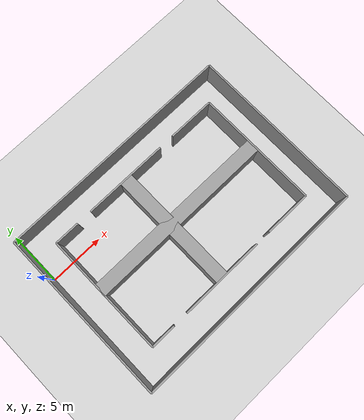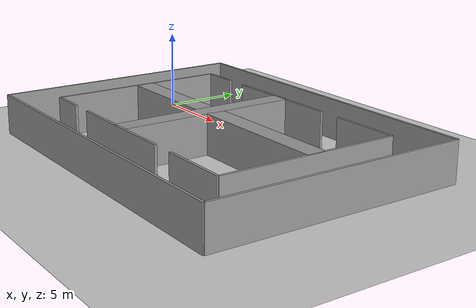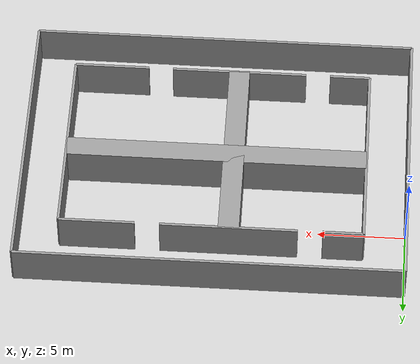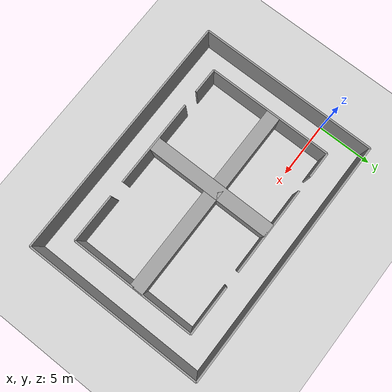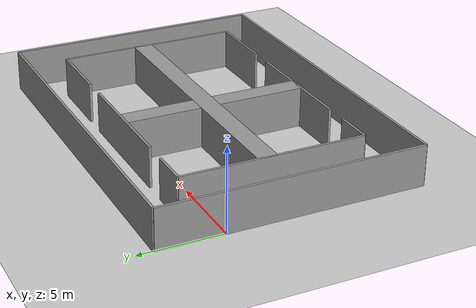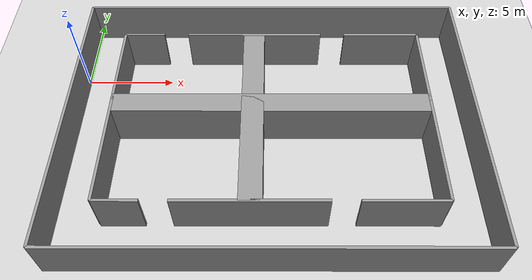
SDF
<sdf version="1.7">
 <world name="lab_world">
  <gravity>0 0 -9.8</gravity>
  <physics type="ode">
   <max_step_size>0.001</max_step_size>
   <real_time_factor>1</real_time_factor>
   <real_time_update_rate>1000</real_time_update_rate>
  </physics>
  <scene><ambient>0.4 0.4 0.4 1</ambient><background>0.7 0.7 0.7 1</background><shadows>0</shadows></scene>
  <light type="directional" name="sun">
   <pose>0 0 12 0 -0 0</pose>
   <diffuse>0.8 0.8 0.8 1</diffuse>
   <specular>0.2 0.2 0.2 1</specular>
   <attenuation>
    <range>1000</range>
    <constant>0.9</constant>
    <linear>0.01</linear>
    <quadratic>0.001</quadratic>
   </attenuation>
   <direction>-0.5 0.1 -0.9</direction>
  </light>
  <include><uri>model://ground_plane</uri><name>ground_plane</name></include>
  <model name="env05_gate_ring">
   <static>1</static>
   <link name="wall_00">
    <pose>11.0000 4.0000 1.250 0 -0 0</pose>
    <collision name="collision"><geometry><box><size>22.0000 0.1500 2.50</size></box></geometry></collision>
    <visual name="visual">
     <geometry><box><size>22.0000 0.1500 2.50</size></box></geometry>
     <material>
      <script><uri>file://media/materials/scripts/gazebo.material</uri><name>Gazebo/Grey</name></script>
     </material>
    </visual>
   </link>
   <link name="wall_01">
    <pose>11.0000 -12.0000 1.250 0 -0 0</pose>
    <collision name="collision"><geometry><box><size>22.0000 0.1500 2.50</size></box></geometry></collision>
    <visual name="visual">
     <geometry><box><size>22.0000 0.1500 2.50</size></box></geometry>
     <material>
      <script><uri>file://media/materials/scripts/gazebo.material</uri><name>Gazebo/Grey</name></script>
     </material>
    </visual>
   </link>
   <link name="wall_02">
    <pose>0.0000 -4.0000 1.250 0 -0 0</pose>
    <collision name="collision"><geometry><box><size>0.1500 16.0000 2.50</size></box></geometry></collision>
    <visual name="visual">
     <geometry><box><size>0.1500 16.0000 2.50</size></box></geometry>
     <material>
      <script><uri>file://media/materials/scripts/gazebo.material</uri><name>Gazebo/Grey</name></script>
     </material>
    </visual>
   </link>
   <link name="wall_03">
    <pose>22.0000 -4.0000 1.250 0 -0 0</pose>
    <collision name="collision"><geometry><box><size>0.1500 16.0000 2.50</size></box></geometry></collision>
    <visual name="visual">
     <geometry><box><size>0.1500 16.0000 2.50</size></box></geometry>
     <material>
      <script><uri>file://media/materials/scripts/gazebo.material</uri><name>Gazebo/Grey</name></script>
     </material>
    </visual>
   </link>
   <link name="wall_04">
    <pose>3.5500 1.6000 1.250 0 -0 0</pose>
    <collision name="collision"><geometry><box><size>2.3000 0.1500 2.50</size></box></geometry></collision>
    <visual name="visual">
     <geometry><box><size>2.3000 0.1500 2.50</size></box></geometry>
     <material>
      <script><uri>file://media/materials/scripts/gazebo.material</uri><name>Gazebo/Grey</name></script>
     </material>
    </visual>
   </link>
   <link name="wall_05">
    <pose>10.0000 1.6000 1.250 0 -0 0</pose>
    <collision name="collision"><geometry><box><size>7.8000 0.1500 2.50</size></box></geometry></collision>
    <visual name="visual">
     <geometry><box><size>7.8000 0.1500 2.50</size></box></geometry>
     <material>
      <script><uri>file://media/materials/scripts/gazebo.material</uri><name>Gazebo/Grey</name></script>
     </material>
    </visual>
   </link>
   <link name="wall_06">
    <pose>17.4500 1.6000 1.250 0 -0 0</pose>
    <collision name="collision"><geometry><box><size>4.3000 0.1500 2.50</size></box></geometry></collision>
    <visual name="visual">
     <geometry><box><size>4.3000 0.1500 2.50</size></box></geometry>
     <material>
      <script><uri>file://media/materials/scripts/gazebo.material</uri><name>Gazebo/Grey</name></script>
     </material>
    </visual>
   </link>
   <link name="wall_07">
    <pose>3.5500 -9.6000 1.250 0 -0 0</pose>
    <collision name="collision"><geometry><box><size>2.3000 0.1500 2.50</size></box></geometry></collision>
    <visual name="visual">
     <geometry><box><size>2.3000 0.1500 2.50</size></box></geometry>
     <material>
      <script><uri>file://media/materials/scripts/gazebo.material</uri><name>Gazebo/Grey</name></script>
     </material>
    </visual>
   </link>
   <link name="wall_08">
    <pose>10.0000 -9.6000 1.250 0 -0 0</pose>
    <collision name="collision"><geometry><box><size>7.8000 0.1500 2.50</size></box></geometry></collision>
    <visual name="visual">
     <geometry><box><size>7.8000 0.1500 2.50</size></box></geometry>
     <material>
      <script><uri>file://media/materials/scripts/gazebo.material</uri><name>Gazebo/Grey</name></script>
     </material>
    </visual>
   </link>
   <link name="wall_09">
    <pose>17.4500 -9.6000 1.250 0 -0 0</pose>
    <collision name="collision"><geometry><box><size>4.3000 0.1500 2.50</size></box></geometry></collision>
    <visual name="visual">
     <geometry><box><size>4.3000 0.1500 2.50</size></box></geometry>
     <material>
      <script><uri>file://media/materials/scripts/gazebo.material</uri><name>Gazebo/Grey</name></script>
     </material>
    </visual>
   </link>
   <link name="wall_10">
    <pose>2.4000 -4.0000 1.250 0 -0 0</pose>
    <collision name="collision"><geometry><box><size>0.1500 11.2000 2.50</size></box></geometry></collision>
    <visual name="visual">
     <geometry><box><size>0.1500 11.2000 2.50</size></box></geometry>
     <material>
      <script><uri>file://media/materials/scripts/gazebo.material</uri><name>Gazebo/Grey</name></script>
     </material>
    </visual>
   </link>
   <link name="wall_11">
    <pose>19.6000 -4.0000 1.250 0 -0 0</pose>
    <collision name="collision"><geometry><box><size>0.1500 11.2000 2.50</size></box></geometry></collision>
    <visual name="visual">
     <geometry><box><size>0.1500 11.2000 2.50</size></box></geometry>
     <material>
      <script><uri>file://media/materials/scripts/gazebo.material</uri><name>Gazebo/Grey</name></script>
     </material>
    </visual>
   </link>
   <link name="wall_12">
    <pose>10.0000 -4.0000 1.250 0 -0 0</pose>
    <collision name="collision"><geometry><box><size>1.2000 11.2000 2.50</size></box></geometry></collision>
    <visual name="visual">
     <geometry><box><size>1.2000 11.2000 2.50</size></box></geometry>
     <material>
      <script><uri>file://media/materials/scripts/gazebo.material</uri><name>Gazebo/Grey</name></script>
     </material>
    </visual>
   </link>
   <link name="wall_13">
    <pose>11.0000 -3.6000 1.250 0 -0 0</pose>
    <collision name="collision"><geometry><box><size>17.2000 1.2000 2.50</size></box></geometry></collision>
    <visual name="visual">
     <geometry><box><size>17.2000 1.2000 2.50</size></box></geometry>
     <material>
      <script><uri>file://media/materials/scripts/gazebo.material</uri><name>Gazebo/Grey</name></script>
     </material>
    </visual>
   </link>
  </model>
 </world>
</sdf>
